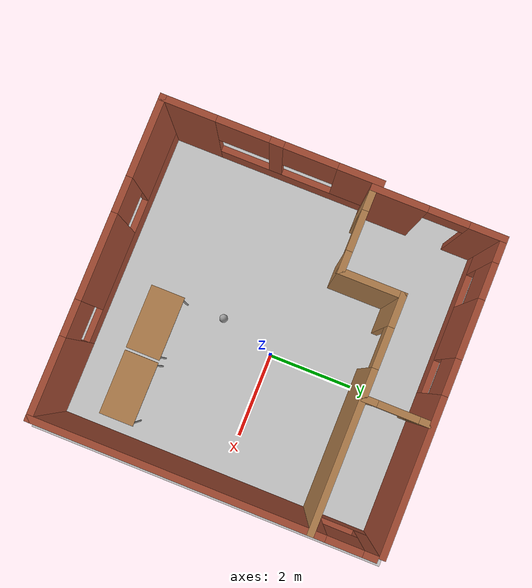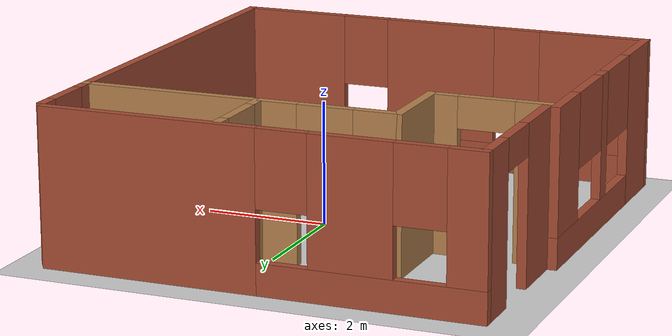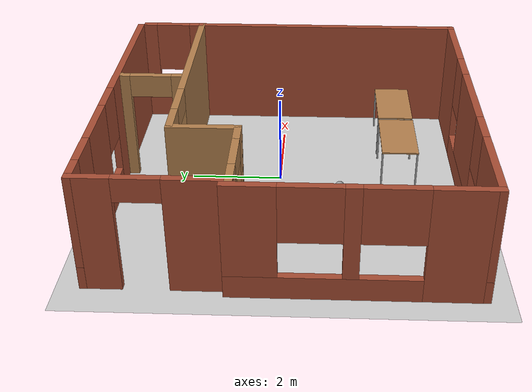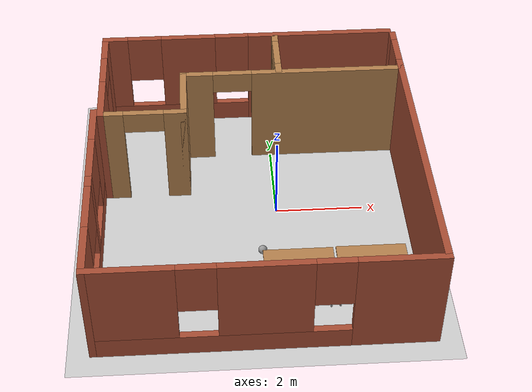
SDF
<sdf version="1.7">
 <world name="default">
  <plugin name="hello" filename="libhello.so"/>
  <light name="sun" type="directional">
   <pose>0 0 10 0 -0 0</pose>
   <diffuse>0.8 0.8 0.8 1</diffuse>
   <specular>0.2 0.2 0.2 1</specular>
   <attenuation>
    <range>1000</range>
    <constant>0.9</constant>
    <linear>0.01</linear>
    <quadratic>0.001</quadratic>
   </attenuation>
   <direction>-0.5 0.1 -0.9</direction>
   <spot><inner_angle>0</inner_angle><outer_angle>0</outer_angle><falloff>0</falloff></spot>
  </light>
  <model name="ground_plane">
   <static>1</static>
   <link name="link1">
    <collision name="collision">
     <geometry><plane><normal>0 0 1</normal><size>100 100</size></plane></geometry>
     <surface>
      <contact><collide_bitmask>65535</collide_bitmask></contact>
      <friction><ode><mu>100</mu><mu2>50</mu2></ode></friction>
     </surface>
    </collision>
    <visual name="visual">
     <cast_shadows>0</cast_shadows>
     <geometry><plane><normal>0 0 1</normal><size>100 100</size></plane></geometry>
     <material>
      <script><uri>file://media/materials/scripts/gazebo.material</uri><name>Gazebo/Grey</name></script>
     </material>
    </visual>
   </link>
  </model>
  <gravity>0 0 -9.8</gravity>
  <magnetic_field>6e-06 2.3e-05 -4.2e-05</magnetic_field>
  <atmosphere type="adiabatic"/>
  <physics type="ode">
   <max_step_size>0.001</max_step_size>
   <real_time_factor>1</real_time_factor>
   <real_time_update_rate>1000</real_time_update_rate>
  </physics>
  <scene><ambient>0.4 0.4 0.4 1</ambient><background>0.7 0.7 0.7 1</background><shadows>1</shadows></scene>
  <spherical_coordinates>
   <surface_model>EARTH_WGS84</surface_model>
   <latitude_deg>0</latitude_deg>
   <longitude_deg>0</longitude_deg>
   <elevation>0</elevation>
   <heading_deg>0</heading_deg>
  </spherical_coordinates>
  <model name="table">
   <static>1</static>
   <link name="link9">
    <collision name="surface">
     <pose>0 0 1 0 -0 0</pose>
     <geometry><box><size>1.5 0.8 0.03</size></box></geometry>
     <surface><friction><ode><mu>0.6</mu><mu2>0.6</mu2></ode></friction></surface>
    </collision>
    <visual name="visual1">
     <pose>0 0 1 0 -0 0</pose>
     <geometry><box><size>1.5 0.8 0.03</size></box></geometry>
     <material>
      <script><uri>file://media/materials/scripts/gazebo.material</uri><name>Gazebo/Wood</name></script>
     </material>
    </visual>
    <collision name="front_left_leg1">
     <pose>0.68 0.38 0.5 0 -0 0</pose>
     <geometry><cylinder><radius>0.02</radius><length>1</length></cylinder></geometry>
    </collision>
    <visual name="front_left_leg2">
     <pose>0.68 0.38 0.5 0 -0 0</pose>
     <geometry><cylinder><radius>0.02</radius><length>1</length></cylinder></geometry>
     <material>
      <script><uri>file://media/materials/scripts/gazebo.material</uri><name>Gazebo/Grey</name></script>
     </material>
    </visual>
    <collision name="front_right_leg3">
     <pose>0.68 -0.38 0.5 0 -0 0</pose>
     <geometry><cylinder><radius>0.02</radius><length>1</length></cylinder></geometry>
    </collision>
    <visual name="front_right_leg4">
     <pose>0.68 -0.38 0.5 0 -0 0</pose>
     <geometry><cylinder><radius>0.02</radius><length>1</length></cylinder></geometry>
     <material>
      <script><uri>file://media/materials/scripts/gazebo.material</uri><name>Gazebo/Grey</name></script>
     </material>
    </visual>
    <collision name="back_right_leg5">
     <pose>-0.68 -0.38 0.5 0 -0 0</pose>
     <geometry><cylinder><radius>0.02</radius><length>1</length></cylinder></geometry>
    </collision>
    <visual name="back_right_leg6">
     <pose>-0.68 -0.38 0.5 0 -0 0</pose>
     <geometry><cylinder><radius>0.02</radius><length>1</length></cylinder></geometry>
     <material>
      <script><uri>file://media/materials/scripts/gazebo.material</uri><name>Gazebo/Grey</name></script>
     </material>
    </visual>
    <collision name="back_left_leg7">
     <pose>-0.68 0.38 0.5 0 -0 0</pose>
     <geometry><cylinder><radius>0.02</radius><length>1</length></cylinder></geometry>
    </collision>
    <visual name="back_left_leg8">
     <pose>-0.68 0.38 0.5 0 -0 0</pose>
     <geometry><cylinder><radius>0.02</radius><length>1</length></cylinder></geometry>
     <material>
      <script><uri>file://media/materials/scripts/gazebo.material</uri><name>Gazebo/Grey</name></script>
     </material>
    </visual>
   </link>
   <pose>1.84968 -2.62814 0.010678 0 -0 0</pose>
  </model>
  <model name="table_0">
   <static>1</static>
   <link name="link12">
    <collision name="surface">
     <pose>0 0 1 0 -0 0</pose>
     <geometry><box><size>1.5 0.8 0.03</size></box></geometry>
     <surface><friction><ode><mu>0.6</mu><mu2>0.6</mu2></ode></friction></surface>
    </collision>
    <visual name="visual1">
     <pose>0 0 1 0 -0 0</pose>
     <geometry><box><size>1.5 0.8 0.03</size></box></geometry>
     <material>
      <script><uri>file://media/materials/scripts/gazebo.material</uri><name>Gazebo/Wood</name></script>
     </material>
    </visual>
    <collision name="front_left_leg20">
     <pose>0.68 0.38 0.5 0 -0 0</pose>
     <geometry><cylinder><radius>0.02</radius><length>1</length></cylinder></geometry>
    </collision>
    <visual name="front_left_leg21">
     <pose>0.68 0.38 0.5 0 -0 0</pose>
     <geometry><cylinder><radius>0.02</radius><length>1</length></cylinder></geometry>
     <material>
      <script><uri>file://media/materials/scripts/gazebo.material</uri><name>Gazebo/Grey</name></script>
     </material>
    </visual>
    <collision name="front_right_leg23">
     <pose>0.68 -0.38 0.5 0 -0 0</pose>
     <geometry><cylinder><radius>0.02</radius><length>1</length></cylinder></geometry>
    </collision>
    <visual name="front_right_leg24">
     <pose>0.68 -0.38 0.5 0 -0 0</pose>
     <geometry><cylinder><radius>0.02</radius><length>1</length></cylinder></geometry>
     <material>
      <script><uri>file://media/materials/scripts/gazebo.material</uri><name>Gazebo/Grey</name></script>
     </material>
    </visual>
    <collision name="back_right_leg25">
     <pose>-0.68 -0.38 0.5 0 -0 0</pose>
     <geometry><cylinder><radius>0.02</radius><length>1</length></cylinder></geometry>
    </collision>
    <visual name="back_right_leg26">
     <pose>-0.68 -0.38 0.5 0 -0 0</pose>
     <geometry><cylinder><radius>0.02</radius><length>1</length></cylinder></geometry>
     <material>
      <script><uri>file://media/materials/scripts/gazebo.material</uri><name>Gazebo/Grey</name></script>
     </material>
    </visual>
    <collision name="back_left_leg10">
     <pose>-0.68 0.38 0.5 0 -0 0</pose>
     <geometry><cylinder><radius>0.02</radius><length>1</length></cylinder></geometry>
    </collision>
    <visual name="back_left_leg11">
     <pose>-0.68 0.38 0.5 0 -0 0</pose>
     <geometry><cylinder><radius>0.02</radius><length>1</length></cylinder></geometry>
     <material>
      <script><uri>file://media/materials/scripts/gazebo.material</uri><name>Gazebo/Grey</name></script>
     </material>
    </visual>
   </link>
   <pose>0.292557 -2.63399 0 0 -0 0</pose>
  </model>
  <model name="my_ball.model">
   <link name="link_1">
    <inertial>
     <mass>1</mass>
     <inertia><ixx>0.1</ixx><ixy>0</ixy><ixz>0</ixz><iyy>0.1</iyy><iyz>0</iyz><izz>0.1</izz></inertia>
    </inertial>
    <visual name="visual">
     <geometry><sphere><radius>0.1</radius></sphere></geometry>
     <material>
      <lighting>1</lighting>
      <script><uri>file://media/materials/scripts/gazebo.material</uri><name>Gazebo/Grey</name></script>
      <shader type="pixel"><normal_map>__default__</normal_map></shader>
      <ambient>1 1 1 1</ambient>
      <diffuse>1 1 1 1</diffuse>
      <specular>1 1 1 1</specular>
      <emissive>1 1 1 1</emissive>
     </material>
    </visual>
    <collision name="collision">
     <geometry><sphere><radius>0.1</radius></sphere></geometry>
     <surface>
      <friction>
       <ode><mu>1</mu><mu2>1</mu2><fdir1>0 0 0</fdir1><slip1>0</slip1><slip2>0</slip2></ode>
       <torsional>
        <coefficient>1</coefficient>
        <patch_radius>0</patch_radius>
        <surface_radius>0</surface_radius>
        <use_patch_radius>1</use_patch_radius>
        <ode><slip>0</slip></ode>
       </torsional>
      </friction>
      <bounce><restitution_coefficient>0</restitution_coefficient><threshold>1e+06</threshold></bounce>
      <contact>
       <collide_without_contact>0</collide_without_contact>
       <collide_without_contact_bitmask>1</collide_without_contact_bitmask>
       <collide_bitmask>1</collide_bitmask>
       <ode>
        <soft_cfm>0</soft_cfm>
        <soft_erp>0.2</soft_erp>
        <kp>1e+13</kp>
        <kd>1</kd>
        <max_vel>0.01</max_vel>
        <min_depth>0</min_depth>
       </ode>
       <bullet>
        <split_impulse>1</split_impulse>
        <split_impulse_penetration_threshold>-0.01</split_impulse_penetration_threshold>
        <soft_cfm>0</soft_cfm>
        <soft_erp>0.2</soft_erp>
        <kp>1e+13</kp>
        <kd>1</kd>
       </bullet>
      </contact>
     </surface>
    </collision>
   </link>
   <static>0</static>
   <pose>-0.398049 -1.33788 0.1 0 -0 0</pose>
  </model>
  <model name="new_home">
   <pose>-0.503972 0.476409 0 0 -0 0</pose>
   <link name="Wall_0">
    <pose>0.025 3.1025 0 0 -0 3.14159</pose>
    <visual name="Wall_0_Visual_0">
     <pose>-1.75595 0 1.25 0 -0 0</pose>
     <geometry><box><size>3.4881 0.15 2.5</size></box></geometry>
     <material>
      <script><uri>file://media/materials/scripts/gazebo.material</uri><name>Gazebo/Bricks</name></script>
      <ambient>1 1 1 1</ambient>
     </material>
     <meta><layer>0</layer></meta>
    </visual>
    <collision name="Wall_0_Collision_0">
     <geometry><box><size>3.4881 0.15 2.5</size></box></geometry>
     <pose>-1.75595 0 1.25 0 -0 0</pose>
    </collision>
    <visual name="Wall_0_Visual_1">
     <pose>1.74405 0 0.25 0 -0 0</pose>
     <geometry><box><size>3.5119 0.15 0.5</size></box></geometry>
     <material>
      <script><uri>file://media/materials/scripts/gazebo.material</uri><name>Gazebo/Bricks</name></script>
      <ambient>1 1 1 1</ambient>
     </material>
     <meta><layer>0</layer></meta>
    </visual>
    <collision name="Wall_0_Collision_1">
     <geometry><box><size>3.5119 0.15 0.5</size></box></geometry>
     <pose>1.74405 0 0.25 0 -0 0</pose>
    </collision>
    <visual name="Wall_0_Visual_2">
     <pose>1.44055 0 1.5 0 -0 0</pose>
     <geometry><box><size>1.30489 0.15 2</size></box></geometry>
     <material>
      <script><uri>file://media/materials/scripts/gazebo.material</uri><name>Gazebo/Bricks</name></script>
      <ambient>1 1 1 1</ambient>
     </material>
     <meta><layer>0</layer></meta>
    </visual>
    <collision name="Wall_0_Collision_2">
     <geometry><box><size>1.30489 0.15 2</size></box></geometry>
     <pose>1.44055 0 1.5 0 -0 0</pose>
    </collision>
    <visual name="Wall_0_Visual_3">
     <pose>3.19649 0 1.5 0 -0 0</pose>
     <geometry><box><size>0.607012 0.15 2</size></box></geometry>
     <material>
      <script><uri>file://media/materials/scripts/gazebo.material</uri><name>Gazebo/Bricks</name></script>
      <ambient>1 1 1 1</ambient>
     </material>
     <meta><layer>0</layer></meta>
    </visual>
    <collision name="Wall_0_Collision_3">
     <geometry><box><size>0.607012 0.15 2</size></box></geometry>
     <pose>3.19649 0 1.5 0 -0 0</pose>
    </collision>
    <visual name="Wall_0_Visual_4">
     <pose>0.388103 0 1.9 0 -0 0</pose>
     <geometry><box><size>0.8 0.15 1.2</size></box></geometry>
     <material>
      <script><uri>file://media/materials/scripts/gazebo.material</uri><name>Gazebo/Bricks</name></script>
      <ambient>1 1 1 1</ambient>
     </material>
     <meta><layer>0</layer></meta>
    </visual>
    <collision name="Wall_0_Collision_4">
     <geometry><box><size>0.8 0.15 1.2</size></box></geometry>
     <pose>0.388103 0 1.9 0 -0 0</pose>
    </collision>
    <visual name="Wall_0_Visual_5">
     <pose>2.49299 0 1.9 0 -0 0</pose>
     <geometry><box><size>0.8 0.15 1.2</size></box></geometry>
     <material>
      <script><uri>file://media/materials/scripts/gazebo.material</uri><name>Gazebo/Bricks</name></script>
      <ambient>1 1 1 1</ambient>
     </material>
     <meta><layer>0</layer></meta>
    </visual>
    <collision name="Wall_0_Collision_5">
     <geometry><box><size>0.8 0.15 1.2</size></box></geometry>
     <pose>2.49299 0 1.9 0 -0 0</pose>
    </collision>
   </link>
   <link name="Wall_1">
    <pose>-3.4 1.6775 0 0 -0 -1.5708</pose>
    <visual name="Wall_1_Visual_0">
     <pose>-1.08388 0 1.25 0 -0 0</pose>
     <geometry><box><size>0.832243 0.15 2.5</size></box></geometry>
     <material>
      <script><uri>file://media/materials/scripts/gazebo.material</uri><name>Gazebo/Bricks</name></script>
      <ambient>1 1 1 1</ambient>
     </material>
     <meta><layer>0</layer></meta>
    </visual>
    <collision name="Wall_1_Collision_0">
     <geometry><box><size>0.832243 0.15 2.5</size></box></geometry>
     <pose>-1.08388 0 1.25 0 -0 0</pose>
    </collision>
    <visual name="Wall_1_Visual_1">
     <pose>0.866122 0 1.25 0 -0 0</pose>
     <geometry><box><size>1.26776 0.15 2.5</size></box></geometry>
     <material>
      <script><uri>file://media/materials/scripts/gazebo.material</uri><name>Gazebo/Bricks</name></script>
      <ambient>1 1 1 1</ambient>
     </material>
     <meta><layer>0</layer></meta>
    </visual>
    <collision name="Wall_1_Collision_1">
     <geometry><box><size>1.26776 0.15 2.5</size></box></geometry>
     <pose>0.866122 0 1.25 0 -0 0</pose>
    </collision>
    <visual name="Wall_1_Visual_2">
     <pose>-0.217757 0 2.25 0 -0 0</pose>
     <geometry><box><size>0.9 0.15 0.5</size></box></geometry>
     <material>
      <script><uri>file://media/materials/scripts/gazebo.material</uri><name>Gazebo/Bricks</name></script>
      <ambient>1 1 1 1</ambient>
     </material>
     <meta><layer>0</layer></meta>
    </visual>
    <collision name="Wall_1_Collision_2">
     <geometry><box><size>0.9 0.15 0.5</size></box></geometry>
     <pose>-0.217757 0 2.25 0 -0 0</pose>
    </collision>
   </link>
   <link name="Wall_10">
    <pose>-3.55 -2.0725 0 0 -0 1.5708</pose>
    <visual name="Wall_10_Visual_0">
     <pose>-1.86014 0 1.25 0 -0 0</pose>
     <geometry><box><size>1.27972 0.15 2.5</size></box></geometry>
     <material>
      <script><uri>file://media/materials/scripts/gazebo.material</uri><name>Gazebo/Bricks</name></script>
      <ambient>1 1 1 1</ambient>
     </material>
     <meta><layer>0</layer></meta>
    </visual>
    <collision name="Wall_10_Collision_0">
     <geometry><box><size>1.27972 0.15 2.5</size></box></geometry>
     <pose>-1.86014 0 1.25 0 -0 0</pose>
    </collision>
    <visual name="Wall_10_Visual_1">
     <pose>0.639861 0 0.25 0 -0 0</pose>
     <geometry><box><size>3.72028 0.15 0.5</size></box></geometry>
     <material>
      <script><uri>file://media/materials/scripts/gazebo.material</uri><name>Gazebo/Bricks</name></script>
      <ambient>1 1 1 1</ambient>
     </material>
     <meta><layer>0</layer></meta>
    </visual>
    <collision name="Wall_10_Collision_1">
     <geometry><box><size>3.72028 0.15 0.5</size></box></geometry>
     <pose>0.639861 0 0.25 0 -0 0</pose>
    </collision>
    <visual name="Wall_10_Visual_2">
     <pose>0.128076 0 1.5 0 -0 0</pose>
     <geometry><box><size>0.310269 0.15 2</size></box></geometry>
     <material>
      <script><uri>file://media/materials/scripts/gazebo.material</uri><name>Gazebo/Bricks</name></script>
      <ambient>1 1 1 1</ambient>
     </material>
     <meta><layer>0</layer></meta>
    </visual>
    <collision name="Wall_10_Collision_2">
     <geometry><box><size>0.310269 0.15 2</size></box></geometry>
     <pose>0.128076 0 1.5 0 -0 0</pose>
    </collision>
    <visual name="Wall_10_Visual_3">
     <pose>1.98822 0 1.5 0 -0 0</pose>
     <geometry><box><size>1.02357 0.15 2</size></box></geometry>
     <material>
      <script><uri>file://media/materials/scripts/gazebo.material</uri><name>Gazebo/Bricks</name></script>
      <ambient>1 1 1 1</ambient>
     </material>
     <meta><layer>0</layer></meta>
    </visual>
    <collision name="Wall_10_Collision_3">
     <geometry><box><size>1.02357 0.15 2</size></box></geometry>
     <pose>1.98822 0 1.5 0 -0 0</pose>
    </collision>
    <visual name="Wall_10_Visual_4">
     <pose>-0.623669 0 1.9 0 -0 0</pose>
     <geometry><box><size>1.19322 0.15 1.2</size></box></geometry>
     <material>
      <script><uri>file://media/materials/scripts/gazebo.material</uri><name>Gazebo/Bricks</name></script>
      <ambient>1 1 1 1</ambient>
     </material>
     <meta><layer>0</layer></meta>
    </visual>
    <collision name="Wall_10_Collision_4">
     <geometry><box><size>1.19322 0.15 1.2</size></box></geometry>
     <pose>-0.623669 0 1.9 0 -0 0</pose>
    </collision>
    <visual name="Wall_10_Visual_5">
     <pose>0.879821 0 1.9 0 -0 0</pose>
     <geometry><box><size>1.19322 0.15 1.2</size></box></geometry>
     <material>
      <script><uri>file://media/materials/scripts/gazebo.material</uri><name>Gazebo/Bricks</name></script>
      <ambient>1 1 1 1</ambient>
     </material>
     <meta><layer>0</layer></meta>
    </visual>
    <collision name="Wall_10_Collision_5">
     <geometry><box><size>1.19322 0.15 1.2</size></box></geometry>
     <pose>0.879821 0 1.9 0 -0 0</pose>
    </collision>
   </link>
   <link name="Wall_12">
    <pose>0.677774 2.31582 0 0 -0 1.5708</pose>
    <visual name="Wall_12_Visual_0">
     <pose>-0.578976 0 1.25 0 -0 0</pose>
     <geometry><box><size>0.342049 0.15 2.5</size></box></geometry>
     <material>
      <script><uri>file://media/materials/scripts/gazebo.material</uri><name>Gazebo/Wood</name></script>
      <ambient>1 1 1 1</ambient>
     </material>
     <meta><layer>0</layer></meta>
    </visual>
    <collision name="Wall_12_Collision_0">
     <geometry><box><size>0.342049 0.15 2.5</size></box></geometry>
     <pose>-0.578976 0 1.25 0 -0 0</pose>
    </collision>
    <visual name="Wall_12_Visual_1">
     <pose>0.621024 0 1.25 0 -0 0</pose>
     <geometry><box><size>0.257951 0.15 2.5</size></box></geometry>
     <material>
      <script><uri>file://media/materials/scripts/gazebo.material</uri><name>Gazebo/Wood</name></script>
      <ambient>1 1 1 1</ambient>
     </material>
     <meta><layer>0</layer></meta>
    </visual>
    <collision name="Wall_12_Collision_1">
     <geometry><box><size>0.257951 0.15 2.5</size></box></geometry>
     <pose>0.621024 0 1.25 0 -0 0</pose>
    </collision>
    <visual name="Wall_12_Visual_2">
     <pose>0.042049 0 2.25 0 -0 0</pose>
     <geometry><box><size>0.9 0.15 0.5</size></box></geometry>
     <material>
      <script><uri>file://media/materials/scripts/gazebo.material</uri><name>Gazebo/Wood</name></script>
      <ambient>1 1 1 1</ambient>
     </material>
     <meta><layer>0</layer></meta>
    </visual>
    <collision name="Wall_12_Collision_2">
     <geometry><box><size>0.9 0.15 0.5</size></box></geometry>
     <pose>0.042049 0 2.25 0 -0 0</pose>
    </collision>
   </link>
   <link name="Wall_2">
    <pose>-2.475 0.2525 0 0 -0 0</pose>
    <visual name="Wall_2_Visual_0">
     <pose>-0.709929 0 1.25 0 -0 0</pose>
     <geometry><box><size>0.580143 0.15 2.5</size></box></geometry>
     <material>
      <script><uri>file://media/materials/scripts/gazebo.material</uri><name>Gazebo/Wood</name></script>
      <ambient>1 1 1 1</ambient>
     </material>
     <meta><layer>0</layer></meta>
    </visual>
    <collision name="Wall_2_Collision_0">
     <geometry><box><size>0.580143 0.15 2.5</size></box></geometry>
     <pose>-0.709929 0 1.25 0 -0 0</pose>
    </collision>
    <visual name="Wall_2_Visual_1">
     <pose>0.740071 0 1.25 0 -0 0</pose>
     <geometry><box><size>0.519857 0.15 2.5</size></box></geometry>
     <material>
      <script><uri>file://media/materials/scripts/gazebo.material</uri><name>Gazebo/Wood</name></script>
      <ambient>1 1 1 1</ambient>
     </material>
     <meta><layer>0</layer></meta>
    </visual>
    <collision name="Wall_2_Collision_1">
     <geometry><box><size>0.519857 0.15 2.5</size></box></geometry>
     <pose>0.740071 0 1.25 0 -0 0</pose>
    </collision>
    <visual name="Wall_2_Visual_2">
     <pose>0.030143 0 2.25 0 -0 0</pose>
     <geometry><box><size>0.9 0.15 0.5</size></box></geometry>
     <material>
      <script><uri>file://media/materials/scripts/gazebo.material</uri><name>Gazebo/Wood</name></script>
      <ambient>1 1 1 1</ambient>
     </material>
     <meta><layer>0</layer></meta>
    </visual>
    <collision name="Wall_2_Collision_2">
     <geometry><box><size>0.9 0.15 0.5</size></box></geometry>
     <pose>0.030143 0 2.25 0 -0 0</pose>
    </collision>
   </link>
   <link name="Wall_3">
    <collision name="Wall_3_Collision">
     <geometry><box><size>1.5 0.15 2.5</size></box></geometry>
     <pose>0 0 1.25 0 -0 0</pose>
    </collision>
    <visual name="Wall_3_Visual">
     <pose>0 0 1.25 0 -0 0</pose>
     <geometry><box><size>1.5 0.15 2.5</size></box></geometry>
     <material>
      <script><uri>file://media/materials/scripts/gazebo.material</uri><name>Gazebo/Wood</name></script>
      <ambient>1 1 1 1</ambient>
     </material>
     <meta><layer>0</layer></meta>
    </visual>
    <pose>-1.55 0.9275 0 0 -0 1.5708</pose>
   </link>
   <link name="Wall_4">
    <pose>1 1.6025 0 0 -0 0</pose>
    <visual name="Wall_4_Visual_0">
     <pose>-2.24218 0 1.25 0 -0 0</pose>
     <geometry><box><size>0.765636 0.15 2.5</size></box></geometry>
     <material>
      <script><uri>file://media/materials/scripts/gazebo.material</uri><name>Gazebo/Wood</name></script>
      <ambient>1 1 1 1</ambient>
     </material>
     <meta><layer>0</layer></meta>
    </visual>
    <collision name="Wall_4_Collision_0">
     <geometry><box><size>0.765636 0.15 2.5</size></box></geometry>
     <pose>-2.24218 0 1.25 0 -0 0</pose>
    </collision>
    <visual name="Wall_4_Visual_1">
     <pose>0.832818 0 1.25 0 -0 0</pose>
     <geometry><box><size>3.58436 0.15 2.5</size></box></geometry>
     <material>
      <script><uri>file://media/materials/scripts/gazebo.material</uri><name>Gazebo/Wood</name></script>
      <ambient>1 1 1 1</ambient>
     </material>
     <meta><layer>0</layer></meta>
    </visual>
    <collision name="Wall_4_Collision_1">
     <geometry><box><size>3.58436 0.15 2.5</size></box></geometry>
     <pose>0.832818 0 1.25 0 -0 0</pose>
    </collision>
    <visual name="Wall_4_Visual_2">
     <pose>-1.40936 0 2.25 0 -0 0</pose>
     <geometry><box><size>0.9 0.15 0.5</size></box></geometry>
     <material>
      <script><uri>file://media/materials/scripts/gazebo.material</uri><name>Gazebo/Wood</name></script>
      <ambient>1 1 1 1</ambient>
     </material>
     <meta><layer>0</layer></meta>
    </visual>
    <collision name="Wall_4_Collision_2">
     <geometry><box><size>0.9 0.15 0.5</size></box></geometry>
     <pose>-1.40936 0 2.25 0 -0 0</pose>
    </collision>
   </link>
   <link name="Wall_5">
    <pose>3.55 2.2775 0 0 -0 1.5708</pose>
    <visual name="Wall_5_Visual_0">
     <pose>-0.557946 0 1.25 0 -0 0</pose>
     <geometry><box><size>0.384108 0.15 2.5</size></box></geometry>
     <material>
      <script><uri>file://media/materials/scripts/gazebo.material</uri><name>Gazebo/Bricks</name></script>
      <ambient>1 1 1 1</ambient>
     </material>
     <meta><layer>0</layer></meta>
    </visual>
    <collision name="Wall_5_Collision_0">
     <geometry><box><size>0.384108 0.15 2.5</size></box></geometry>
     <pose>-0.557946 0 1.25 0 -0 0</pose>
    </collision>
    <visual name="Wall_5_Visual_1">
     <pose>0.192054 0 0.25 0 -0 0</pose>
     <geometry><box><size>1.11589 0.15 0.5</size></box></geometry>
     <material>
      <script><uri>file://media/materials/scripts/gazebo.material</uri><name>Gazebo/Bricks</name></script>
      <ambient>1 1 1 1</ambient>
     </material>
     <meta><layer>0</layer></meta>
    </visual>
    <collision name="Wall_5_Collision_1">
     <geometry><box><size>1.11589 0.15 0.5</size></box></geometry>
     <pose>0.192054 0 0.25 0 -0 0</pose>
    </collision>
    <visual name="Wall_5_Visual_2">
     <pose>0.592054 0 1.5 0 -0 0</pose>
     <geometry><box><size>0.315892 0.15 2</size></box></geometry>
     <material>
      <script><uri>file://media/materials/scripts/gazebo.material</uri><name>Gazebo/Bricks</name></script>
      <ambient>1 1 1 1</ambient>
     </material>
     <meta><layer>0</layer></meta>
    </visual>
    <collision name="Wall_5_Collision_2">
     <geometry><box><size>0.315892 0.15 2</size></box></geometry>
     <pose>0.592054 0 1.5 0 -0 0</pose>
    </collision>
    <visual name="Wall_5_Visual_3">
     <pose>0.034108 0 1.9 0 -0 0</pose>
     <geometry><box><size>0.8 0.15 1.2</size></box></geometry>
     <material>
      <script><uri>file://media/materials/scripts/gazebo.material</uri><name>Gazebo/Bricks</name></script>
      <ambient>1 1 1 1</ambient>
     </material>
     <meta><layer>0</layer></meta>
    </visual>
    <collision name="Wall_5_Collision_3">
     <geometry><box><size>0.8 0.15 1.2</size></box></geometry>
     <pose>0.034108 0 1.9 0 -0 0</pose>
    </collision>
   </link>
   <link name="Wall_8">
    <collision name="Wall_8_Collision">
     <geometry><box><size>6.25 0.15 2.5</size></box></geometry>
     <pose>0 0 1.25 0 -0 0</pose>
    </collision>
    <visual name="Wall_8_Visual">
     <pose>0 0 1.25 0 -0 0</pose>
     <geometry><box><size>6.25 0.15 2.5</size></box></geometry>
     <material>
      <script><uri>file://media/materials/scripts/gazebo.material</uri><name>Gazebo/Bricks</name></script>
      <ambient>1 1 1 1</ambient>
     </material>
     <meta><layer>0</layer></meta>
    </visual>
    <pose>3.55 -1.4475 0 0 -0 -1.5708</pose>
   </link>
   <link name="Wall_9">
    <pose>0 -4.4975 0 0 -0 3.14159</pose>
    <visual name="Wall_9_Visual_0">
     <pose>-2.69835 0 1.25 0 -0 0</pose>
     <geometry><box><size>1.85331 0.15 2.5</size></box></geometry>
     <material>
      <script><uri>file://media/materials/scripts/gazebo.material</uri><name>Gazebo/Bricks</name></script>
      <ambient>1 1 1 1</ambient>
     </material>
     <meta><layer>0</layer></meta>
    </visual>
    <collision name="Wall_9_Collision_0">
     <geometry><box><size>1.85331 0.15 2.5</size></box></geometry>
     <pose>-2.69835 0 1.25 0 -0 0</pose>
    </collision>
    <visual name="Wall_9_Visual_1">
     <pose>0.926654 0 0.25 0 -0 0</pose>
     <geometry><box><size>5.39669 0.15 0.5</size></box></geometry>
     <material>
      <script><uri>file://media/materials/scripts/gazebo.material</uri><name>Gazebo/Bricks</name></script>
      <ambient>1 1 1 1</ambient>
     </material>
     <meta><layer>0</layer></meta>
    </visual>
    <collision name="Wall_9_Collision_1">
     <geometry><box><size>5.39669 0.15 0.5</size></box></geometry>
     <pose>0.926654 0 0.25 0 -0 0</pose>
    </collision>
    <visual name="Wall_9_Visual_2">
     <pose>-0.006987 0 1.5 0 -0 0</pose>
     <geometry><box><size>1.92941 0.15 2</size></box></geometry>
     <material>
      <script><uri>file://media/materials/scripts/gazebo.material</uri><name>Gazebo/Bricks</name></script>
      <ambient>1 1 1 1</ambient>
     </material>
     <meta><layer>0</layer></meta>
    </visual>
    <collision name="Wall_9_Collision_2">
     <geometry><box><size>1.92941 0.15 2</size></box></geometry>
     <pose>-0.006987 0 1.5 0 -0 0</pose>
    </collision>
    <visual name="Wall_9_Visual_3">
     <pose>2.69136 0 1.5 0 -0 0</pose>
     <geometry><box><size>1.86728 0.15 2</size></box></geometry>
     <material>
      <script><uri>file://media/materials/scripts/gazebo.material</uri><name>Gazebo/Bricks</name></script>
      <ambient>1 1 1 1</ambient>
     </material>
     <meta><layer>0</layer></meta>
    </visual>
    <collision name="Wall_9_Collision_3">
     <geometry><box><size>1.86728 0.15 2</size></box></geometry>
     <pose>2.69136 0 1.5 0 -0 0</pose>
    </collision>
    <visual name="Wall_9_Visual_4">
     <pose>-1.37169 0 1.9 0 -0 0</pose>
     <geometry><box><size>0.8 0.15 1.2</size></box></geometry>
     <material>
      <script><uri>file://media/materials/scripts/gazebo.material</uri><name>Gazebo/Bricks</name></script>
      <ambient>1 1 1 1</ambient>
     </material>
     <meta><layer>0</layer></meta>
    </visual>
    <collision name="Wall_9_Collision_4">
     <geometry><box><size>0.8 0.15 1.2</size></box></geometry>
     <pose>-1.37169 0 1.9 0 -0 0</pose>
    </collision>
    <visual name="Wall_9_Visual_5">
     <pose>1.35772 0 1.9 0 -0 0</pose>
     <geometry><box><size>0.8 0.15 1.2</size></box></geometry>
     <material>
      <script><uri>file://media/materials/scripts/gazebo.material</uri><name>Gazebo/Bricks</name></script>
      <ambient>1 1 1 1</ambient>
     </material>
     <meta><layer>0</layer></meta>
    </visual>
    <collision name="Wall_9_Collision_5">
     <geometry><box><size>0.8 0.15 1.2</size></box></geometry>
     <pose>1.35772 0 1.9 0 -0 0</pose>
    </collision>
   </link>
   <static>1</static>
  </model>
 </world>
</sdf>
